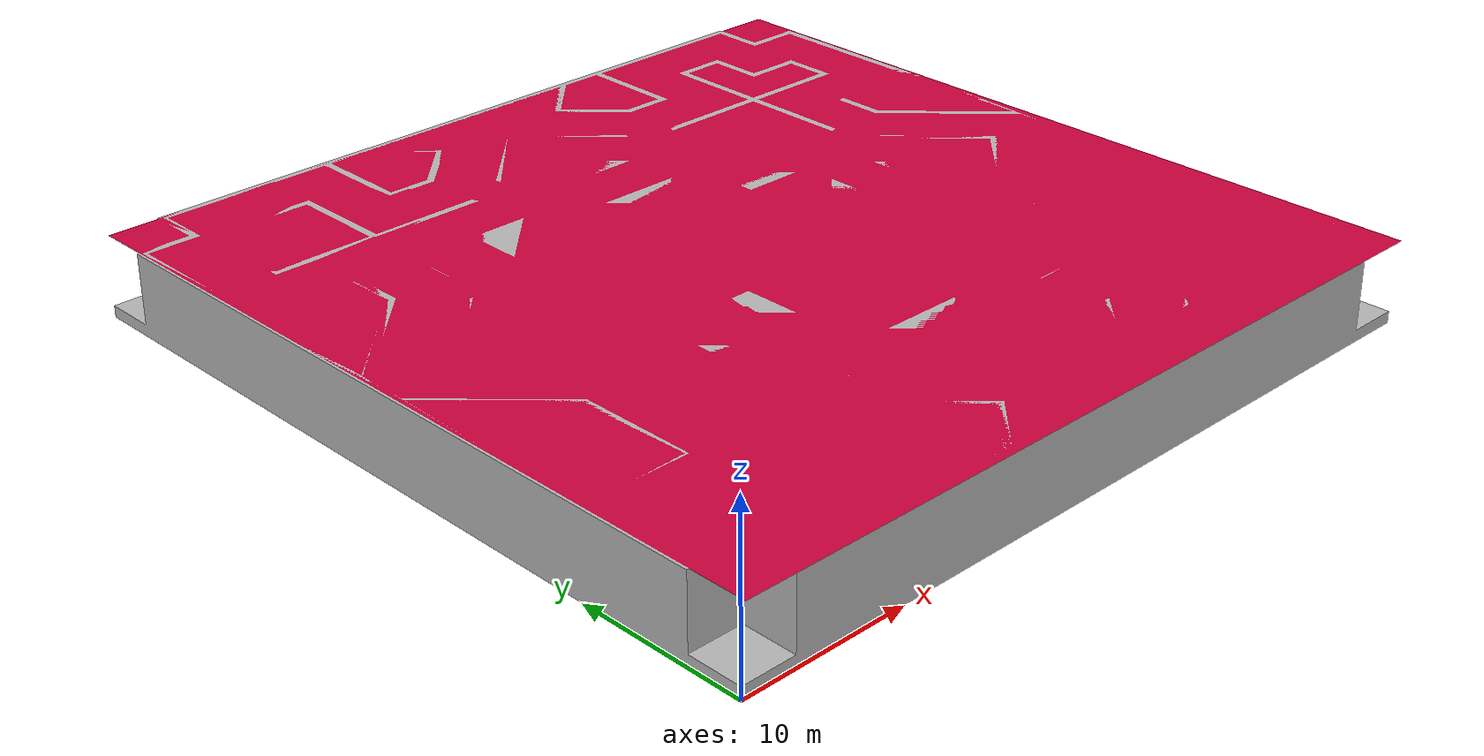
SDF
<?xml version="1.0" ?>
<sdf version="1.6">
  <model name="octamaze">
    <static>true</static>
    <link name="link">
      <pose>0 0 0 0 0 0</pose>
      <collision name="collision">
        <geometry>
          <mesh>
            <scale>1.4 1.4 1.4</scale>
            <uri>model://octamaze/octamaze.dae</uri>
          </mesh>
        </geometry>
      </collision>
      <visual name="visual">
        <geometry>
          <mesh>
            <scale>1.4 1.4 1.4</scale>
            <uri>model://octamaze/octamaze.dae</uri>
          </mesh>
        </geometry>
      </visual>
    </link>
  </model>
</sdf>
